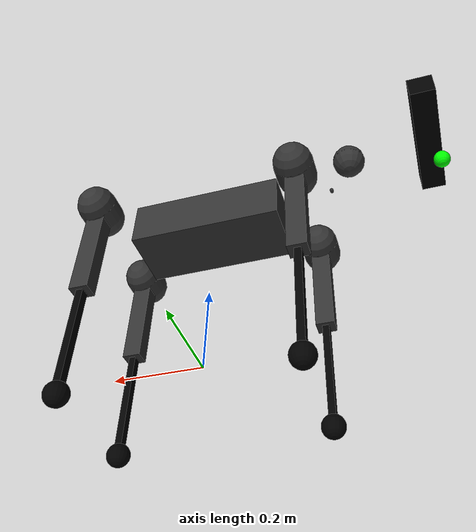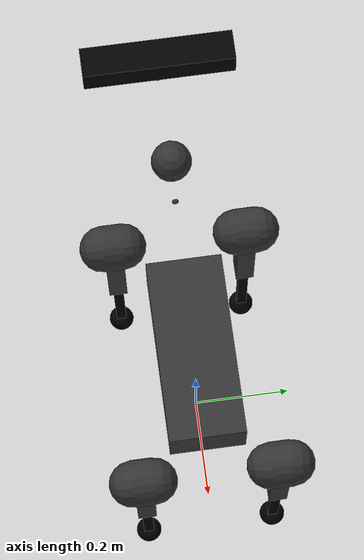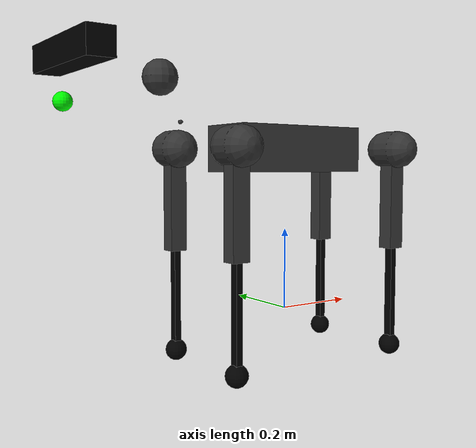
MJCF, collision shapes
<mujoco model="aliengo_description">
    <compiler angle="radian" meshdir="./assets/" autolimits="true"/>
    <option cone="elliptic" impratio="100" />
    <size njmax="500" nconmax="100" />
    <option gravity='0 0 -9.806' timestep='0.002'/>

    <default>
        <geom contype="1" conaffinity="1" friction="0.8 0.02 0.01" rgba="0.5 0.6 0.7 1" margin="0.001" group="0"/>

        <light castshadow="false" diffuse="1 1 1"/>
        <motor ctrlrange="-44.4 44.4" ctrllimited="true"/>
        <camera fovy="60"/>
        <joint damping="3" armature="0.01" frictionloss="0.2" />

    </default>
    <!-- No rename the assests these are the mesh files-->
    <asset>
        <mesh name="leader/trunk" file="trunk.stl" />
        <mesh name="leader/hip" file="hip.stl" />
        <mesh name="leader/thigh_mirror" file="thigh_mirror.stl" />
        <mesh name="leader/calf" file="calf.stl" />
        <mesh name="leader/thigh" file="thigh.stl" />
        <mesh name="leader/base_arm_link" file="base_arm_link.stl" />
        <mesh name="leader/arm_link_1" file="arm_link_1.stl" />
        <mesh name="leader/arm_link_2" file="arm_link_2.stl" />
        <mesh name="leader/arm_link_3" file="arm_link_3.stl" />

    </asset>

    <!-- pos is used to set the position-->
    <worldbody>
        <light directional="true" diffuse=".8 .8 .8" pos="0 0 10" dir="0 0 -10"/>
        <camera pos="1.794 0.068 0.397" mode="trackcom" xyaxes="0.008 1.000 0.000 -0.155 0.001 0.988"/>
        <camera name="leader/track" mode="trackcom" pos="0 -1.3 1.6" xyaxes="1 0 0 0 0.707 0.707"/>

         <body name="leader/trunk" pos="0 0 0.4">
            <inertial pos="0.00846406 0.00404455 -0.000762916" quat="-3.12625e-05 0.708321 0.00247254 0.705886" mass="13.042" diaginertia="0.174706 0.161175 0.033357" />
            <joint name='leader/trunk' type="free" />
            <geom type="mesh" contype="0" conaffinity="0" group="1" rgba="0.2 0.2 0.2 1" mesh="leader/trunk" />
            <geom size="0.18 0.075 0.056" type="box" rgba="0.2 0.2 0.2 0" />
            <geom size="0.0005 0.0005 0.0005" type="box" contype="0" conaffinity="0" group="1" rgba="0.8 0 0 0" />
            <geom size="0.0005 0.0005 0.0005" type="box" rgba="0.8 0 0 0" />

            <body name="leader/FL_hip" pos="0.2399 0.051 0">
                <inertial pos="-0.022191 0.015144 -1.5e-05" quat="-0.0135493 0.706835 0.0117635 0.707151" mass="1.993" diaginertia="0.00558695 0.00491009 0.00290132" />
                <joint name="leader/FL_hip_joint" pos="0 0 0" axis="1 0 0" limited="true" range="-1.22173 1.22173" />
                <geom type="mesh" contype="0" conaffinity="0" group="1" rgba="0.2 0.2 0.2 1" mesh="leader/hip" />
                <geom size="0.046 0.0209" pos="0 0.083 0" quat="0.707107 0.707107 0 0" type="capsule" rgba="0.2 0.2 0.2 0" />
                <body name="leader/FL_thigh" pos="0 0.083 0">
                    <inertial pos="-0.005607 -0.003877 -0.048199" quat="0.717987 -0.031246 -0.0335669 0.694544" mass="0.639" diaginertia="0.0058474 0.00571186 0.000324584" />
                    <joint name="leader/FL_thigh_joint" pos="0 0 0" axis="0 1 0" />
                    <geom type="mesh" contype="0" conaffinity="0" group="1" rgba="0.2 0.2 0.2 1" mesh="leader/thigh" />
                    <geom size="0.125 0.0187 0.0215" pos="0 0 -0.125" quat="0.707107 0 0.707107 0" type="box" rgba="0.2 0.2 0.2 0" />
                    <body name="leader/FL_calf" pos="0 0 -0.25">
                        <inertial pos="0.00215606 4.88427e-05 -0.166671" quat="0.707462 0.00517582 0.00535172 0.706712" mass="0.267" diaginertia="0.00690975 0.00689712 5.4885e-05" />
                        <joint name="leader/FL_calf_joint" pos="0 0 0" axis="0 1 0" limited="true" range="-2.77507 -0.645772" />
                        <geom type="mesh" contype="0" conaffinity="0" group="1" rgba="0 0 0 1" mesh="leader/calf" />
                        <geom size="0.125 0.0104 0.008" pos="0 0 -0.125" quat="0.707107 0 0.707107 0" type="box" rgba="0 0 0 0" />
                        <geom name="FL1" size="0.0165" pos="0 0 -0.25" contype="0" conaffinity="0" group="1" rgba="0 0 0 1" />
                        <geom size="0.0265" pos="0 0 -0.25" rgba="0 0 0 0" />
                    </body>
                </body>
            </body>

            <body name="leader/FR_hip" pos="0.2399 -0.051 0">
                <inertial pos="-0.022191 -0.015144 -1.5e-05" quat="0.0135493 0.706835 -0.0117635 0.707151" mass="1.993" diaginertia="0.00558695 0.00491009 0.00290132" />
                <joint name="leader/FR_hip_joint" pos="0 0 0" axis="1 0 0" limited="true" range="-1.22173 1.22173" />
                <geom quat="0 1 0 0" type="mesh" contype="0" conaffinity="0" group="1" rgba="0.2 0.2 0.2 1" mesh="leader/hip" />
                <geom size="0.046 0.0209" pos="0 -0.083 0" quat="0.707107 0.707107 0 0" type="capsule" rgba="0.2 0.2 0.2 0" />
                <body name="leader/FR_thigh" pos="0 -0.083 0">
                    <inertial pos="-0.005607 0.003877 -0.048199" quat="0.694544 -0.0335669 -0.031246 0.717987" mass="0.639" diaginertia="0.0058474 0.00571186 0.000324584" />
                    <joint name="leader/FR_thigh_joint" pos="0 0 0" axis="0 1 0" />
                    <geom type="mesh" contype="0" conaffinity="0" group="1" rgba="0.2 0.2 0.2 1" mesh="leader/thigh_mirror" />
                    <geom size="0.125 0.0187 0.0215" pos="0 0 -0.125" quat="0.707107 0 0.707107 0" type="box" rgba="0.2 0.2 0.2 0" />
                    <body name="leader/FR_calf" pos="0 0 -0.25">
                        <inertial pos="0.00215606 4.88427e-05 -0.166671" quat="0.707462 0.00517582 0.00535172 0.706712" mass="0.267" diaginertia="0.00690975 0.00689712 5.4885e-05" />
                        <joint name="leader/FR_calf_joint" pos="0 0 0" axis="0 1 0" limited="true" range="-2.77507 -0.645772" />
                        <geom type="mesh" contype="0" conaffinity="0" group="1" rgba="0 0 0 1" mesh="leader/calf" />
                        <geom size="0.125 0.0104 0.008" pos="0 0 -0.125" quat="0.707107 0 0.707107 0" type="box" rgba="0 0 0 0" />
                        <geom name="FR1" size="0.0165" pos="0 0 -0.25" contype="0" conaffinity="0" group="1" rgba="0 0 0 1" />
                        <geom size="0.0265" pos="0 0 -0.25" rgba="0 0 0 0" />
                    </body>
                </body>
            </body>

            <body name="leader/RL_hip" pos="-0.2399 0.051 0">
                <inertial pos="0.022191 0.015144 -1.5e-05" quat="0.0117635 0.707151 -0.0135493 0.706835" mass="1.993" diaginertia="0.00558695 0.00491009 0.00290132" />
                <joint name="leader/RL_hip_joint" pos="0 0 0" axis="1 0 0" limited="true" range="-1.22173 1.22173" />
                <geom quat="0 0 1 0" type="mesh" contype="0" conaffinity="0" group="1" rgba="0.2 0.2 0.2 1" mesh="leader/hip" />
                <geom size="0.046 0.0209" pos="0 0.083 0" quat="0.707107 0.707107 0 0" type="capsule" rgba="0.2 0.2 0.2 0" />
                <body name="leader/RL_thigh" pos="0 0.083 0">
                    <inertial pos="-0.005607 -0.003877 -0.048199" quat="0.717987 -0.031246 -0.0335669 0.694544" mass="0.639" diaginertia="0.0058474 0.00571186 0.000324584" />
                    <joint name="leader/RL_thigh_joint" pos="0 0 0" axis="0 1 0" />
                    <geom type="mesh" contype="0" conaffinity="0" group="1" rgba="0.2 0.2 0.2 1" mesh="leader/thigh" />
                    <geom size="0.125 0.0187 0.0215" pos="0 0 -0.125" quat="0.707107 0 0.707107 0" type="box" rgba="0.2 0.2 0.2 0" />
                    <body name="leader/RL_calf" pos="0 0 -0.25">
                        <inertial pos="0.00215606 4.88427e-05 -0.166671" quat="0.707462 0.00517582 0.00535172 0.706712" mass="0.267" diaginertia="0.00690975 0.00689712 5.4885e-05" />
                        <joint name="leader/RL_calf_joint" pos="0 0 0" axis="0 1 0" limited="true" range="-2.77507 -0.645772" />
                        <geom type="mesh" contype="0" conaffinity="0" group="1" rgba="0 0 0 1" mesh="leader/calf" />
                        <geom size="0.125 0.0104 0.008" pos="0 0 -0.125" quat="0.707107 0 0.707107 0" type="box" rgba="0 0 0 0" />
                        <geom name="RL1" size="0.0165" pos="0 0 -0.25" contype="0" conaffinity="0" group="1" rgba="0 0 0 1" />
                        <geom size="0.0265" pos="0 0 -0.25" rgba="0 0 0 0" />
                    </body>
                </body>
            </body>

            <body name="leader/RR_hip" pos="-0.2399 -0.051 0">
                <inertial pos="0.022191 -0.015144 -1.5e-05" quat="-0.0117635 0.707151 0.0135493 0.706835" mass="1.993" diaginertia="0.00558695 0.00491009 0.00290132" />
                <joint name="leader/RR_hip_joint" pos="0 0 0" axis="1 0 0" limited="true" range="-1.22173 1.22173" />
                <geom quat="0 0 0 -1" type="mesh" contype="0" conaffinity="0" group="1" rgba="0.2 0.2 0.2 1" mesh="leader/hip" />
                <geom size="0.046 0.0209" pos="0 -0.083 0" quat="0.707107 0.707107 0 0" type="capsule" rgba="0.2 0.2 0.2 0" />
                <body name="leader/RR_thigh" pos="0 -0.083 0">
                    <inertial pos="-0.005607 0.003877 -0.048199" quat="0.694544 -0.0335669 -0.031246 0.717987" mass="0.639" diaginertia="0.0058474 0.00571186 0.000324584" />
                    <joint name="leader/RR_thigh_joint" pos="0 0 0" axis="0 1 0" />
                    <geom type="mesh" contype="0" conaffinity="0" group="1" rgba="0.2 0.2 0.2 1" mesh="leader/thigh_mirror" />
                    <geom size="0.125 0.0187 0.0215" pos="0 0 -0.125" quat="0.707107 0 0.707107 0" type="box" rgba="0.2 0.2 0.2 0" />
                    <body name="leader/RR_calf" pos="0 0 -0.25">
                        <inertial pos="0.00215606 4.88427e-05 -0.166671" quat="0.707462 0.00517582 0.00535172 0.706712" mass="0.267" diaginertia="0.00690975 0.00689712 5.4885e-05" />
                        <joint name="leader/RR_calf_joint" pos="0 0 0" axis="0 1 0" limited="true" range="-2.77507 -0.645772" />
                        <geom type="mesh" contype="0" conaffinity="0" group="1" rgba="0 0 0 1" mesh="leader/calf" />
                        <geom size="0.125 0.0104 0.008" pos="0 0 -0.125" quat="0.707107 0 0.707107 0" type="box" rgba="0 0 0 0" />
                        <geom name="RR1" size="0.0165" pos="0 0 -0.25" contype="0" conaffinity="0" group="1" rgba="0 0 0 1" />
                        <geom size="0.0265" pos="0 0 -0.25" rgba="0 0 0 0" />
                    </body>
                </body>
            </body>

            <!-- LEADER CONFIGURATION -->
            <body name="leader/arm_base" pos="-0.3 0 0.056" >

                    <inertial pos="0. 0.0 0.0" quat="0 0 0 1" mass="0.02" diaginertia="0.000004622 0.000004495 0.000002079" />
                    <geom quat="0 0 0 1" type="mesh" contype="0" conaffinity="0" group="2" rgba="0.2 0.2 0.2 1" mesh="leader/base_arm_link" />
                    <geom size="0.0046 0.00209" pos="0 0 0" quat="0.707107 0.707107 0 0" type="capsule" rgba="0.2 0.2 0.2 0" />

                    <body name="leader/arm_link_0" pos="0 0 0.06" quat="0 0 0 1">
                        <inertial pos="0. 0 0." quat="0 0 0 1" mass="0.5" diaginertia="0.000004622 0.000004495 0.000002079" />
                        <joint name="leader/arm_link_1_joint" pos="0. 0 0." axis="0 0 1" limited="true" range="-1 1"  stiffness="10"
                        damping="1" />
                        <geom type="mesh" contype="0" conaffinity="0" group="2" rgba="0.2 0.2 0.2 1" mesh="leader/arm_link_1" />

                        <body name="leader/arm_link_1" pos="0.05 0 0.035 ">
                            <inertial pos="0.0194 0.0 -0.125" quat="0 0 0 1" mass="0.5" diaginertia="0.00000457 0.000004831 0.000001409" />
                            <joint name="leader/arm_link_2_joint" pos="0.01 0 0.0" axis="0 1 0" limited="true" range="-1 1" stiffness="10"
                            damping="1" />
                            <geom type="mesh" contype="0" conaffinity="0" group="2" rgba="0.2 0.2 0.2 1" mesh="leader/arm_link_2" />
                            <geom size="0.04 0.0002 0.1" pos="0. 0 0" quat="0 0 0 1" type="capsule" rgba="0.2 0.2 0.2 0" />

                            <body name="leader/arm_link_2" pos="0.18 0.0 0.185" quat="1 0. 0 0">
                                <inertial pos="0.0388 0.0 -0.25" quat="1 0 0 0" mass="0.220" diaginertia="0.000011088 0.00001072 0.000011255" />

                                <joint name="leader/arm_link_3_joint" pos="0. 0 0" axis="0 1 0" limited="false" range="-1 0.2" stiffness="10"
                                damping="1" />
                                <geom name="leader/apply_force_frame" type="mesh" contype="0" conaffinity="0" group="2" rgba="0 0 0 1" mesh="leader/arm_link_3" />
                                <geom size="0.03 0.03 0.15" pos="0.02 0 -0.15" quat="0 0 1 1" type="box" rgba="0 0 0 0" />

                                <site name="leader/eef_leader" pos="0.04 0 -0.25" size="0.01" quat="-1 0 0 0"/>

                                <body name="leader/eef" pos="0.04 0 -0.25" quat="1 0 0 0">
                                    <inertial pos="0 0 0" mass="0.1" diaginertia="0.00001 0.00001 0.00001"/>
                                    <joint name="leader/eef_joint"  damping="0.1"/>
                                    <geom name="leader/eef_geom" type="sphere" size="0.02" rgba="0 1 0 1" contype="0" conaffinity="0"/>
                                    <site name="leader/eef_contact" pos="0 0 0" size="0.01" rgba="1 0 0 1"/>
                                </body>
                            </body>
                        </body>
                    </body>
            </body>

        </body>

        <!-- add a box mounting point -->

    </worldbody>

    <actuator>

        <motor name="leader/FR_hip"       gear="1" group="0" joint="leader/FR_hip_joint"/>
        <motor name="leader/FR_thigh"     gear="1" group="0" joint="leader/FR_thigh_joint"/>
        <motor name="leader/FR_calf"      gear="1" group="0" joint="leader/FR_calf_joint"/>
        <motor name="leader/FL_hip"       gear="1" group="0" joint="leader/FL_hip_joint"/>
        <motor name="leader/FL_thigh"     gear="1" group="0" joint="leader/FL_thigh_joint"/>
        <motor name="leader/FL_calf"      gear="1" group="0" joint="leader/FL_calf_joint"/>
        <motor name="leader/RR_hip"       gear="1" group="0" joint="leader/RR_hip_joint"/>
        <motor name="leader/RR_thigh"     gear="1" group="0" joint="leader/RR_thigh_joint"/>
        <motor name="leader/RR_calf"      gear="1" group="0" joint="leader/RR_calf_joint" />
        <motor name="leader/RL_hip"       gear="1" group="0" joint="leader/RL_hip_joint"/>
        <motor name="leader/RL_thigh"     gear="1" group="0" joint="leader/RL_thigh_joint"/>
        <motor name="leader/RL_calf"      gear="1" group="0" joint="leader/RL_calf_joint"/>
        <motor name="leader/arm_link_1"   gear="1" group="1" joint="leader/arm_link_1_joint"/>
        <motor name="leader/arm_link_2"   gear="1" group="1" joint="leader/arm_link_2_joint"/>
        <motor name="leader/arm_link_3"   gear="1" group="1" joint="leader/arm_link_3_joint"/>
        <!-- second robot-->

    </actuator>

    <sensor>

        <jointpos name="leader/arm_link_1_joint_pos" joint="leader/arm_link_1_joint"/>
        <jointpos name="leader/arm_link_2_joint_pos" joint="leader/arm_link_2_joint"/>
        <jointpos name="leader/arm_link_3_joint_pos" joint="leader/arm_link_3_joint"/>

    </sensor>

    <!--this defines the initial position of the robot-->
</mujoco>
